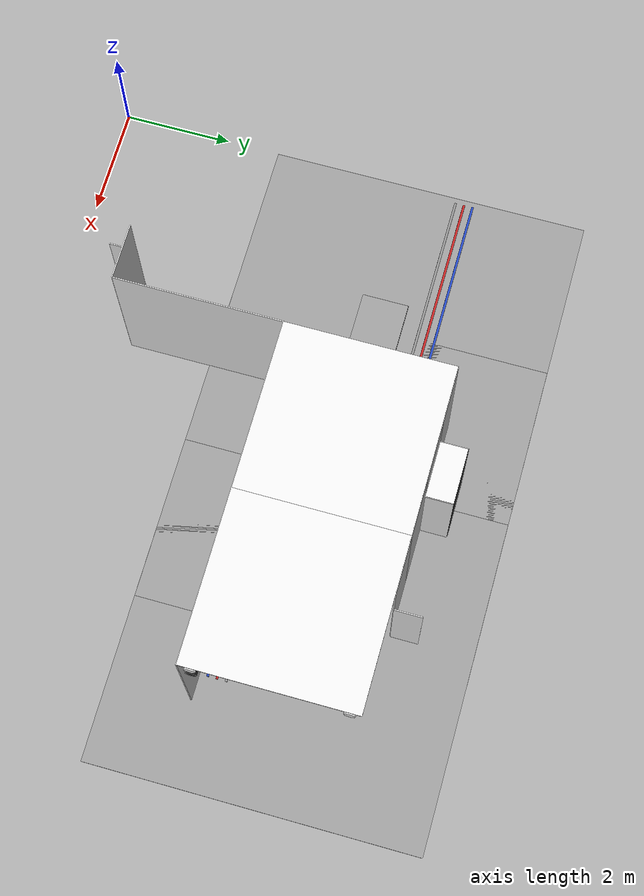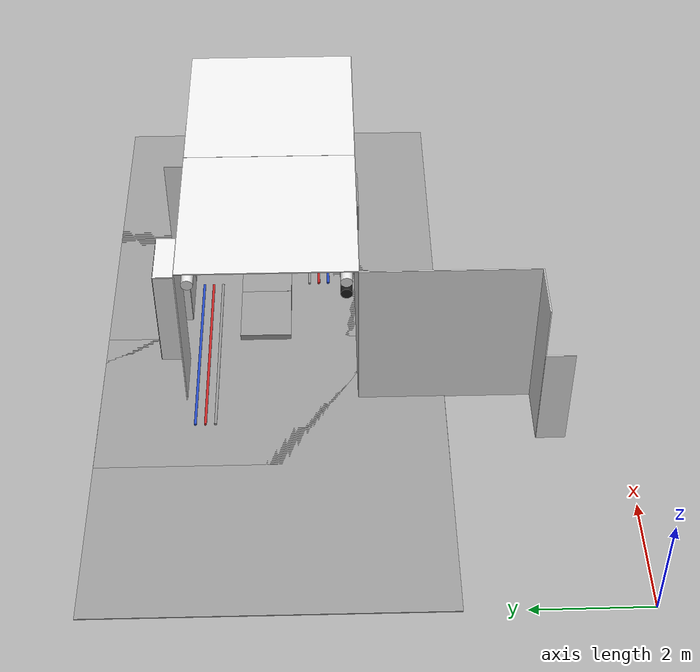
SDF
<sdf version="1.6">
 <world name="default">
  <model name="wall_front_1_1_0_3">
   <static>1</static>
   <pose>4.5 3.0 1.5 0.0 0.0 -1.57</pose>
   <link name="link">
    <collision name="collision"><geometry><box><size>3.0 0.02 3.0</size></box></geometry></collision>
    <visual name="visual">
     <material>
      <script><name>Gazebo/White</name><uri>file://media/materials/scripts/gazebo.material</uri></script>
     </material>
     <geometry><box><size>3.0 0.02 3.0</size></box></geometry>
    </visual>
   </link>
  </model>
  <model name="wall_right_front_left_1_1_0_3">
   <static>1</static>
   <pose>4.0 1.5 1.5 0.0 0.0 0.0</pose>
   <link name="link">
    <collision name="collision"><geometry><box><size>1.0 0.02 3.0</size></box></geometry></collision>
    <visual name="visual">
     <material>
      <script><name>Gazebo/White</name><uri>file://media/materials/scripts/gazebo.material</uri></script>
     </material>
     <geometry><box><size>1.0 0.02 3.0</size></box></geometry>
    </visual>
   </link>
  </model>
  <model name="wall_right_inside_left_1_1_0_3">
   <static>1</static>
   <pose>3.5 1.25 1.0 0.0 0.0 -1.57</pose>
   <link name="link">
    <collision name="collision"><geometry><box><size>0.5 0.02 2</size></box></geometry></collision>
    <visual name="visual">
     <material>
      <script><name>Gazebo/White</name><uri>file://media/materials/scripts/gazebo.material</uri></script>
     </material>
     <geometry><box><size>0.5 0.02 2</size></box></geometry>
    </visual>
   </link>
  </model>
  <model name="ceiling_1_1_2_1_2">
   <pose>4.0 6.0 2.55 0.0 0.0 1.57</pose>
   <link name="link_1">
    <visual name="visual">
     <geometry><box><size>0.8 1 0.1</size></box></geometry>
     <material>
      <script><uri>file://media/materials/scripts/gazebo.material</uri><name>Gazebo/Grey</name></script>
     </material>
    </visual>
    <collision name="collision"><geometry><box><size>0.8 1 0.1</size></box></geometry></collision>
   </link>
   <static>1</static>
  </model>
  <model name="grey_pipe_right_1_1_2_0_2">
   <static>1</static>
   <pose>3.0 6.0 2.76 0.0 0.0 1.57</pose>
   <link name="link_0">
    <visual name="visual">
     <pose>0.7 0 0 1.57 0 0</pose>
     <geometry><cylinder><radius>0.02</radius><length>3.0</length></cylinder></geometry>
     <material>
      <script><uri>file://media/materials/scripts/gazebo.material</uri><name>Gazebo/Grey</name></script>
     </material>
    </visual>
    <collision name="collision">
     <pose>0.7 0 0 1.57 0 0</pose>
     <geometry><cylinder><radius>0.02</radius><length>3.0</length></cylinder></geometry>
    </collision>
   </link>
  </model>
  <model name="red_pipe_right_1_1_2_0_2">
   <static>1</static>
   <pose>3.0 6.0 2.76 0.0 0.0 1.57</pose>
   <link name="link_0">
    <visual name="visual">
     <pose>0.85 0 0 1.57 0 0</pose>
     <geometry><cylinder><radius>0.02</radius><length>3.0</length></cylinder></geometry>
     <material>
      <script><uri>file://media/materials/scripts/gazebo.material</uri><name>Gazebo/Red</name></script>
     </material>
    </visual>
    <collision name="collision">
     <pose>0.85 0 0 1.57 0 0</pose>
     <geometry><cylinder><radius>0.02</radius><length>3.0</length></cylinder></geometry>
    </collision>
   </link>
  </model>
  <model name="blue_pipe_right_1_1_2_0_2">
   <static>1</static>
   <pose>3.0 6.0 2.76 0.0 0.0 1.57</pose>
   <link name="link_0">
    <visual name="visual">
     <pose>1 0 0 1.57 0 0</pose>
     <geometry><cylinder><radius>0.02</radius><length>3.0</length></cylinder></geometry>
     <material>
      <script><uri>file://media/materials/scripts/gazebo.material</uri><name>Gazebo/Blue</name></script>
     </material>
    </visual>
    <collision name="collision">
     <pose>1 0 0 1.57 0 0</pose>
     <geometry><cylinder><radius>0.02</radius><length>3.0</length></cylinder></geometry>
    </collision>
   </link>
  </model>
  <model name="wall_bottom_1_2_0_2">
   <static>1</static>
   <pose>3.0 6.0 0.0 0.0 0.0 0.0</pose>
   <link name="link">
    <collision name="collision"><geometry><box><size>6.0 6.0 0.02</size></box></geometry></collision>
    <visual name="visual">
     <material>
      <script><name>Gazebo/Grey</name><uri>file://media/materials/scripts/gazebo.material</uri></script>
     </material>
     <geometry><box><size>6.0 6.0 0.02</size></box></geometry>
    </visual>
   </link>
  </model>
  <model name="wall_right_2_2_0_1">
   <static>1</static>
   <pose>6.0 4.5 1.5 0.0 0.0 0.0</pose>
   <link name="link">
    <collision name="collision"><geometry><box><size>3.0 0.02 3.0</size></box></geometry></collision>
    <visual name="visual">
     <material>
      <script><name>Gazebo/White</name><uri>file://media/materials/scripts/gazebo.material</uri></script>
     </material>
     <geometry><box><size>3.0 0.02 3.0</size></box></geometry>
    </visual>
   </link>
  </model>
  <model name="wall_top_2_2_0_1">
   <static>1</static>
   <pose>6.0 6.0 3.0 1.57 0.0 -1.57</pose>
   <link name="link">
    <collision name="collision"><geometry><box><size>3.0 0.02 3.0</size></box></geometry></collision>
    <visual name="visual">
     <material>
      <script><name>Gazebo/White</name><uri>file://media/materials/scripts/gazebo.material</uri></script>
     </material>
     <geometry><box><size>3.0 0.02 3.0</size></box></geometry>
    </visual>
   </link>
  </model>
  <model name="ceiling_1_2_2_0_1">
   <pose>6.0 6.0 2.55 0.0 0.0 -1.57</pose>
   <link name="link_1">
    <visual name="visual">
     <geometry><box><size>0.8 1 0.1</size></box></geometry>
     <material>
      <script><uri>file://media/materials/scripts/gazebo.material</uri><name>Gazebo/Grey</name></script>
     </material>
    </visual>
    <collision name="collision"><geometry><box><size>0.8 1 0.1</size></box></geometry></collision>
   </link>
   <static>1</static>
  </model>
  <model name="ceiling_1_2_2_1_1">
   <pose>5.0 6.0 2.55 0.0 0.0 -1.57</pose>
   <link name="link_1">
    <visual name="visual">
     <geometry><box><size>0.8 1 0.1</size></box></geometry>
     <material>
      <script><uri>file://media/materials/scripts/gazebo.material</uri><name>Gazebo/Grey</name></script>
     </material>
    </visual>
    <collision name="collision"><geometry><box><size>0.8 1 0.1</size></box></geometry></collision>
   </link>
   <static>1</static>
  </model>
  <model name="ceiling_1_2_2_2_1">
   <pose>7.0 6.0 2.55 0.0 0.0 -1.57</pose>
   <link name="link_1">
    <visual name="visual">
     <geometry><box><size>0.8 1 0.1</size></box></geometry>
     <material>
      <script><uri>file://media/materials/scripts/gazebo.material</uri><name>Gazebo/Grey</name></script>
     </material>
    </visual>
    <collision name="collision"><geometry><box><size>0.8 1 0.1</size></box></geometry></collision>
   </link>
   <static>1</static>
  </model>
  <model name="white_pipe_left_2_2_0_1">
   <static>1</static>
   <pose>6.0 6.0 2.76 0.0 0.0 -1.57</pose>
   <link name="link_0">
    <visual name="visual">
     <pose>-1.3 0 0 1.57 0 0</pose>
     <geometry><cylinder><radius>0.1</radius><length>3.0</length></cylinder></geometry>
     <material>
      <script><uri>file://media/materials/scripts/gazebo.material</uri><name>Gazebo/White</name></script>
     </material>
    </visual>
    <collision name="collision">
     <pose>-1.3 0 0 1.57 0 0</pose>
     <geometry><cylinder><radius>0.1</radius><length>3.0</length></cylinder></geometry>
    </collision>
   </link>
  </model>
  <model name="white_pipe_right_2_2_0_1">
   <static>1</static>
   <pose>6.0 6.0 2.76 0.0 0.0 -1.57</pose>
   <link name="link_0">
    <visual name="visual">
     <pose>1.3 0 0 1.57 0 0</pose>
     <geometry><cylinder><radius>0.1</radius><length>3.0</length></cylinder></geometry>
     <material>
      <script><uri>file://media/materials/scripts/gazebo.material</uri><name>Gazebo/White</name></script>
     </material>
    </visual>
    <collision name="collision">
     <pose>1.3 0 0 1.57 0 0</pose>
     <geometry><cylinder><radius>0.1</radius><length>3.0</length></cylinder></geometry>
    </collision>
   </link>
  </model>
  <model name="black_pipe_right_2_2_0_1">
   <static>1</static>
   <pose>6.0 6.0 2.76 0.0 0.0 -1.57</pose>
   <link name="link_0">
    <visual name="visual">
     <pose>1.3 0 -0.25 1.57 0 0</pose>
     <geometry><cylinder><radius>0.1</radius><length>3.0</length></cylinder></geometry>
     <material>
      <script><uri>file://media/materials/scripts/gazebo.material</uri><name>Gazebo/Black</name></script>
     </material>
    </visual>
    <collision name="collision">
     <pose>1.3 0 -0.25 1.57 0 0</pose>
     <geometry><cylinder><radius>0.1</radius><length>3.0</length></cylinder></geometry>
    </collision>
   </link>
  </model>
  <model name="grey_pipe_right_2_2_0_1">
   <static>1</static>
   <pose>6.0 6.0 2.76 0.0 0.0 -1.57</pose>
   <link name="link_0">
    <visual name="visual">
     <pose>0.7 0 0 1.57 0 0</pose>
     <geometry><cylinder><radius>0.02</radius><length>3.0</length></cylinder></geometry>
     <material>
      <script><uri>file://media/materials/scripts/gazebo.material</uri><name>Gazebo/Grey</name></script>
     </material>
    </visual>
    <collision name="collision">
     <pose>0.7 0 0 1.57 0 0</pose>
     <geometry><cylinder><radius>0.02</radius><length>3.0</length></cylinder></geometry>
    </collision>
   </link>
  </model>
  <model name="red_pipe_right_2_2_0_1">
   <static>1</static>
   <pose>6.0 6.0 2.76 0.0 0.0 -1.57</pose>
   <link name="link_0">
    <visual name="visual">
     <pose>0.85 0 0 1.57 0 0</pose>
     <geometry><cylinder><radius>0.02</radius><length>3.0</length></cylinder></geometry>
     <material>
      <script><uri>file://media/materials/scripts/gazebo.material</uri><name>Gazebo/Red</name></script>
     </material>
    </visual>
    <collision name="collision">
     <pose>0.85 0 0 1.57 0 0</pose>
     <geometry><cylinder><radius>0.02</radius><length>3.0</length></cylinder></geometry>
    </collision>
   </link>
  </model>
  <model name="blue_pipe_right_2_2_0_1">
   <static>1</static>
   <pose>6.0 6.0 2.76 0.0 0.0 -1.57</pose>
   <link name="link_0">
    <visual name="visual">
     <pose>1 0 0 1.57 0 0</pose>
     <geometry><cylinder><radius>0.02</radius><length>3.0</length></cylinder></geometry>
     <material>
      <script><uri>file://media/materials/scripts/gazebo.material</uri><name>Gazebo/Blue</name></script>
     </material>
    </visual>
    <collision name="collision">
     <pose>1 0 0 1.57 0 0</pose>
     <geometry><cylinder><radius>0.02</radius><length>3.0</length></cylinder></geometry>
    </collision>
   </link>
  </model>
  <model name="wall_left_front_left_2_2_0_1">
   <static>1</static>
   <pose>7.0 7.5 1.5 0.0 0.0 0.0</pose>
   <link name="link">
    <collision name="collision"><geometry><box><size>1.0 0.02 3.0</size></box></geometry></collision>
    <visual name="visual">
     <material>
      <script><name>Gazebo/White</name><uri>file://media/materials/scripts/gazebo.material</uri></script>
     </material>
     <geometry><box><size>1.0 0.02 3.0</size></box></geometry>
    </visual>
   </link>
  </model>
  <model name="wall_left_front_right_2_2_0_1">
   <static>1</static>
   <pose>5.0 7.5 1.5 0.0 0.0 0.0</pose>
   <link name="link">
    <collision name="collision"><geometry><box><size>1.0 0.02 3.0</size></box></geometry></collision>
    <visual name="visual">
     <material>
      <script><name>Gazebo/White</name><uri>file://media/materials/scripts/gazebo.material</uri></script>
     </material>
     <geometry><box><size>1.0 0.02 3.0</size></box></geometry>
    </visual>
   </link>
  </model>
  <model name="wall_left_front_up_2_2_0_1">
   <static>1</static>
   <pose>6.0 7.5 2.5 0.0 0.0 0.0</pose>
   <link name="link">
    <collision name="collision"><geometry><box><size>1.0 0.02 1.0</size></box></geometry></collision>
    <visual name="visual">
     <material>
      <script><name>Gazebo/White</name><uri>file://media/materials/scripts/gazebo.material</uri></script>
     </material>
     <geometry><box><size>1.0 0.02 1.0</size></box></geometry>
    </visual>
   </link>
  </model>
  <model name="wall_left_inside_back_2_2_0_1">
   <static>1</static>
   <pose>6.0 8.0 1.0 0.0 0.0 0.0</pose>
   <link name="link">
    <collision name="collision"><geometry><box><size>1 0.02 2</size></box></geometry></collision>
    <visual name="visual">
     <material>
      <script><name>Gazebo/DarkGrey</name><uri>file://media/materials/scripts/gazebo.material</uri></script>
     </material>
     <geometry><box><size>1 0.02 2</size></box></geometry>
    </visual>
   </link>
  </model>
  <model name="wall_left_inside_left_2_2_0_1">
   <static>1</static>
   <pose>6.5 7.75 1.0 0.0 0.0 -1.57</pose>
   <link name="link">
    <collision name="collision"><geometry><box><size>0.5 0.02 2</size></box></geometry></collision>
    <visual name="visual">
     <material>
      <script><name>Gazebo/White</name><uri>file://media/materials/scripts/gazebo.material</uri></script>
     </material>
     <geometry><box><size>0.5 0.02 2</size></box></geometry>
    </visual>
   </link>
  </model>
  <model name="wall_left_inside_right_2_2_0_1">
   <static>1</static>
   <pose>5.5 7.75 1.0 0.0 0.0 -1.57</pose>
   <link name="link">
    <collision name="collision"><geometry><box><size>0.5 0.02 2</size></box></geometry></collision>
    <visual name="visual">
     <material>
      <script><name>Gazebo/White</name><uri>file://media/materials/scripts/gazebo.material</uri></script>
     </material>
     <geometry><box><size>0.5 0.02 2</size></box></geometry>
    </visual>
   </link>
  </model>
  <model name="wall_left_inside_top_2_2_0_1">
   <static>1</static>
   <pose>6.0 7.75 2.0 1.57 0.0 0.0</pose>
   <link name="link">
    <collision name="collision"><geometry><box><size>1 0.02 0.5</size></box></geometry></collision>
    <visual name="visual">
     <material>
      <script><name>Gazebo/White</name><uri>file://media/materials/scripts/gazebo.material</uri></script>
     </material>
     <geometry><box><size>1 0.02 0.5</size></box></geometry>
    </visual>
   </link>
  </model>
  <model name="wall_bottom_2_2_0_1">
   <static>1</static>
   <pose>6.0 6.0 0.0 0.0 0.0 -1.57</pose>
   <link name="link">
    <collision name="collision"><geometry><box><size>6.0 6.0 0.02</size></box></geometry></collision>
    <visual name="visual">
     <material>
      <script><name>Gazebo/Grey</name><uri>file://media/materials/scripts/gazebo.material</uri></script>
     </material>
     <geometry><box><size>6.0 6.0 0.02</size></box></geometry>
    </visual>
   </link>
  </model>
  <model name="wall_right_3_2_0_1">
   <static>1</static>
   <pose>9.0 4.5 1.5 0.0 0.0 0.0</pose>
   <link name="link">
    <collision name="collision"><geometry><box><size>3.0 0.02 3.0</size></box></geometry></collision>
    <visual name="visual">
     <material>
      <script><name>Gazebo/White</name><uri>file://media/materials/scripts/gazebo.material</uri></script>
     </material>
     <geometry><box><size>3.0 0.02 3.0</size></box></geometry>
    </visual>
   </link>
  </model>
  <model name="wall_top_3_2_0_1">
   <static>1</static>
   <pose>9.0 6.0 3.0 1.57 0.0 -1.57</pose>
   <link name="link">
    <collision name="collision"><geometry><box><size>3.0 0.02 3.0</size></box></geometry></collision>
    <visual name="visual">
     <material>
      <script><name>Gazebo/White</name><uri>file://media/materials/scripts/gazebo.material</uri></script>
     </material>
     <geometry><box><size>3.0 0.02 3.0</size></box></geometry>
    </visual>
   </link>
  </model>
  <model name="ceiling_1_3_2_0_1">
   <pose>9.0 6.0 2.55 0.0 0.0 -1.57</pose>
   <link name="link_1">
    <visual name="visual">
     <geometry><box><size>0.8 1 0.1</size></box></geometry>
     <material>
      <script><uri>file://media/materials/scripts/gazebo.material</uri><name>Gazebo/Grey</name></script>
     </material>
    </visual>
    <collision name="collision"><geometry><box><size>0.8 1 0.1</size></box></geometry></collision>
   </link>
   <static>1</static>
  </model>
  <model name="ceiling_1_3_2_1_1">
   <pose>8.0 6.0 2.55 0.0 0.0 -1.57</pose>
   <link name="link_1">
    <visual name="visual">
     <geometry><box><size>0.8 1 0.1</size></box></geometry>
     <material>
      <script><uri>file://media/materials/scripts/gazebo.material</uri><name>Gazebo/Grey</name></script>
     </material>
    </visual>
    <collision name="collision"><geometry><box><size>0.8 1 0.1</size></box></geometry></collision>
   </link>
   <static>1</static>
  </model>
  <model name="white_pipe_left_3_2_0_1">
   <static>1</static>
   <pose>9.0 6.0 2.76 0.0 0.0 -1.57</pose>
   <link name="link_0">
    <visual name="visual">
     <pose>-1.3 0 0 1.57 0 0</pose>
     <geometry><cylinder><radius>0.1</radius><length>3.0</length></cylinder></geometry>
     <material>
      <script><uri>file://media/materials/scripts/gazebo.material</uri><name>Gazebo/White</name></script>
     </material>
    </visual>
    <collision name="collision">
     <pose>-1.3 0 0 1.57 0 0</pose>
     <geometry><cylinder><radius>0.1</radius><length>3.0</length></cylinder></geometry>
    </collision>
   </link>
  </model>
  <model name="white_pipe_right_3_2_0_1">
   <static>1</static>
   <pose>9.0 6.0 2.76 0.0 0.0 -1.57</pose>
   <link name="link_0">
    <visual name="visual">
     <pose>1.3 0 0 1.57 0 0</pose>
     <geometry><cylinder><radius>0.1</radius><length>3.0</length></cylinder></geometry>
     <material>
      <script><uri>file://media/materials/scripts/gazebo.material</uri><name>Gazebo/White</name></script>
     </material>
    </visual>
    <collision name="collision">
     <pose>1.3 0 0 1.57 0 0</pose>
     <geometry><cylinder><radius>0.1</radius><length>3.0</length></cylinder></geometry>
    </collision>
   </link>
  </model>
  <model name="black_pipe_right_3_2_0_1">
   <static>1</static>
   <pose>9.0 6.0 2.76 0.0 0.0 -1.57</pose>
   <link name="link_0">
    <visual name="visual">
     <pose>1.3 0 -0.25 1.57 0 0</pose>
     <geometry><cylinder><radius>0.1</radius><length>3.0</length></cylinder></geometry>
     <material>
      <script><uri>file://media/materials/scripts/gazebo.material</uri><name>Gazebo/Black</name></script>
     </material>
    </visual>
    <collision name="collision">
     <pose>1.3 0 -0.25 1.57 0 0</pose>
     <geometry><cylinder><radius>0.1</radius><length>3.0</length></cylinder></geometry>
    </collision>
   </link>
  </model>
  <model name="grey_pipe_right_3_2_0_1">
   <static>1</static>
   <pose>9.0 6.0 2.76 0.0 0.0 -1.57</pose>
   <link name="link_0">
    <visual name="visual">
     <pose>0.7 0 0 1.57 0 0</pose>
     <geometry><cylinder><radius>0.02</radius><length>3.0</length></cylinder></geometry>
     <material>
      <script><uri>file://media/materials/scripts/gazebo.material</uri><name>Gazebo/Grey</name></script>
     </material>
    </visual>
    <collision name="collision">
     <pose>0.7 0 0 1.57 0 0</pose>
     <geometry><cylinder><radius>0.02</radius><length>3.0</length></cylinder></geometry>
    </collision>
   </link>
  </model>
  <model name="red_pipe_right_3_2_0_1">
   <static>1</static>
   <pose>9.0 6.0 2.76 0.0 0.0 -1.57</pose>
   <link name="link_0">
    <visual name="visual">
     <pose>0.85 0 0 1.57 0 0</pose>
     <geometry><cylinder><radius>0.02</radius><length>3.0</length></cylinder></geometry>
     <material>
      <script><uri>file://media/materials/scripts/gazebo.material</uri><name>Gazebo/Red</name></script>
     </material>
    </visual>
    <collision name="collision">
     <pose>0.85 0 0 1.57 0 0</pose>
     <geometry><cylinder><radius>0.02</radius><length>3.0</length></cylinder></geometry>
    </collision>
   </link>
  </model>
  <model name="blue_pipe_right_3_2_0_1">
   <static>1</static>
   <pose>9.0 6.0 2.76 0.0 0.0 -1.57</pose>
   <link name="link_0">
    <visual name="visual">
     <pose>1 0 0 1.57 0 0</pose>
     <geometry><cylinder><radius>0.02</radius><length>3.0</length></cylinder></geometry>
     <material>
      <script><uri>file://media/materials/scripts/gazebo.material</uri><name>Gazebo/Blue</name></script>
     </material>
    </visual>
    <collision name="collision">
     <pose>1 0 0 1.57 0 0</pose>
     <geometry><cylinder><radius>0.02</radius><length>3.0</length></cylinder></geometry>
    </collision>
   </link>
  </model>
  <model name="wall_bottom_3_2_0_1">
   <static>1</static>
   <pose>9.0 6.0 0.0 0.0 0.0 -1.57</pose>
   <link name="link">
    <collision name="collision"><geometry><box><size>6.0 6.0 0.02</size></box></geometry></collision>
    <visual name="visual">
     <material>
      <script><name>Gazebo/Grey</name><uri>file://media/materials/scripts/gazebo.material</uri></script>
     </material>
     <geometry><box><size>6.0 6.0 0.02</size></box></geometry>
    </visual>
   </link>
  </model>
  <model name="wall_left_front_right_3_2_0_1">
   <static>1</static>
   <pose>8.0 7.5 1.5 0.0 0.0 0.0</pose>
   <link name="link">
    <collision name="collision"><geometry><box><size>1.0 0.02 3.0</size></box></geometry></collision>
    <visual name="visual">
     <material>
      <script><name>Gazebo/White</name><uri>file://media/materials/scripts/gazebo.material</uri></script>
     </material>
     <geometry><box><size>1.0 0.02 3.0</size></box></geometry>
    </visual>
   </link>
  </model>
  <model name="wall_left_inside_right_3_2_0_1">
   <static>1</static>
   <pose>8.5 7.75 1.0 0.0 0.0 -1.57</pose>
   <link name="link">
    <collision name="collision"><geometry><box><size>0.5 0.02 2</size></box></geometry></collision>
    <visual name="visual">
     <material>
      <script><name>Gazebo/White</name><uri>file://media/materials/scripts/gazebo.material</uri></script>
     </material>
     <geometry><box><size>0.5 0.02 2</size></box></geometry>
    </visual>
   </link>
  </model>
  <model name="panel_3_2_0_1">
   <static>1</static>
   <pose>9.0 4.5 0.66 0.0 0.0 -1.57</pose>
   <link name="link">
    <collision name="collision"><geometry><box><size>0.2 1 0.6</size></box></geometry></collision>
    <visual name="visual">
     <material>
      <script><name>Gazebo/Grey</name><uri>file://media/materials/scripts/gazebo.material</uri></script>
     </material>
     <geometry><box><size>0.2 1 0.6</size></box></geometry>
    </visual>
   </link>
  </model>
 </world>
</sdf>
